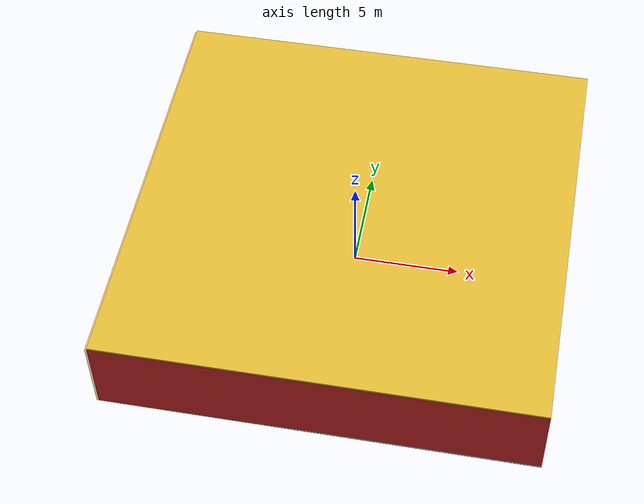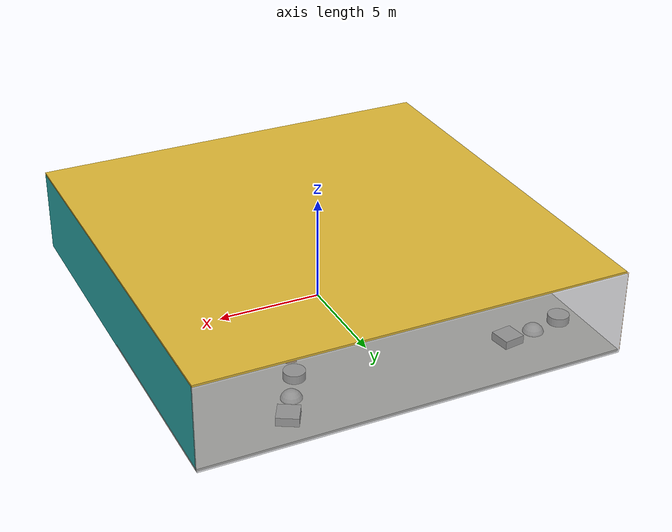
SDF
<sdf version="1.4">
 <world name="default">
  <physics type="ode">
   <max_step_size>0.001</max_step_size>
   <real_time_factor>1</real_time_factor>
   <real_time_update_rate>1000</real_time_update_rate>
   <gravity>0 0 -9.8</gravity>
  </physics>
  <scene><ambient>0.4 0.4 0.4 1</ambient><background>0.7 0.7 0.7 1</background><shadows>1</shadows></scene>
  <model name="Surrounding">
   <static>1</static>
   <link name="Ceiling">
    <collision name="Ceiling_Collision"><geometry><box><size>20 20 0.1</size></box></geometry></collision>
    <visual name="Ceiling_Visual">
     <geometry><box><size>20 20 0.1</size></box></geometry>
     <material>
      <script><uri>file://media/materials/scripts/gazebo.material</uri><name>Gazebo/Gold</name></script>
     </material>
    </visual>
    <pose>0 0 4.05 0 0 0</pose>
   </link>
   <link name="Wall_South">
    <collision name="Wall_South_Collision">
     <geometry><box><size>20 0 4</size></box></geometry>
     <pose>0 0 2 0 -0 0</pose>
    </collision>
    <visual name="Wall_South_Visual">
     <pose>0 0 2 0 -0 0</pose>
     <geometry><box><size>20 0 4</size></box></geometry>
     <material>
      <script><uri>file://media/materials/scripts/gazebo.material</uri><name>Gazebo/Red</name></script>
     </material>
    </visual>
    <velocity_decay><linear>0</linear><angular>0</angular></velocity_decay>
    <pose>0 -10 0 0 -0 0</pose>
   </link>
   <link name="Wall_East">
    <collision name="Wall_21_Collision">
     <geometry><box><size>20 0 4</size></box></geometry>
     <pose>0 0 2 0 -0 0</pose>
    </collision>
    <visual name="Wall_21_Visual">
     <pose>0 0 2 0 -0 0</pose>
     <geometry><box><size>20 0 4</size></box></geometry>
     <material>
      <script>
       <uri>file://media/materials/scripts/gazebo.material</uri>
       <name>Gazebo/TurquoiseGlowOutline</name>
      </script>
     </material>
    </visual>
    <velocity_decay><linear>0</linear><angular>0</angular></velocity_decay>
    <pose>10 0 0 0 -0 1.5708</pose>
   </link>
   <link name="Wall_North">
    <collision name="Wall_22_Collision">
     <geometry><box><size>20 0.2 4</size></box></geometry>
     <pose>0 0 2 0 -0 0</pose>
    </collision>
    <visual name="Wall_22_Visual">
     <pose>0 0 2 0 -0 0</pose>
     <geometry><box><size>20 0.2 4</size></box></geometry>
     <material>
      <script><uri>file://media/materials/scripts/gazebo.material</uri><name>Gazebo/GreyTransparent</name></script>
     </material>
    </visual>
    <velocity_decay><linear>0</linear><angular>0</angular></velocity_decay>
    <pose>0 10 0 0 -0 0</pose>
   </link>
   <link name="Wall_West">
    <collision name="Wall_23_Collision">
     <geometry><box><size>20 0.2 4</size></box></geometry>
     <pose>0 0 2 0 -0 0</pose>
    </collision>
    <visual name="Wall_23_Visual">
     <pose>0 0 2 0 -0 0</pose>
     <geometry><box><size>20 0.2 4</size></box></geometry>
     <material>
      <script>
       <uri>file://media/materials/scripts/gazebo.material</uri>
       <name>Gazebo/OrangeTransparent</name>
      </script>
     </material>
    </visual>
    <velocity_decay><linear>0</linear><angular>0</angular></velocity_decay>
    <pose>-10 0 0 0 0 -1.5708</pose>
   </link>
   <link name="Ground_link">
    <collision name="collision">
     <pose>0 0 .05 0 -0 0</pose>
     <geometry><box><size>20 20 0.1</size></box></geometry>
    </collision>
    <visual name="visual">
     <pose>0 0 .05 0 -0 0</pose>
     <geometry><box><size>20 20 0.1</size></box></geometry>
     <material>
      <script><uri>file://media/materials/scripts/gazebo.material</uri><name>Gazebo/CeilingTiled</name></script>
     </material>
    </visual>
   </link>
   <static>1</static>
  </model>
  <spherical_coordinates>
   <surface_model>EARTH_WGS84</surface_model>
   <latitude_deg>0</latitude_deg>
   <longitude_deg>0</longitude_deg>
   <elevation>0</elevation>
   <heading_deg>0</heading_deg>
  </spherical_coordinates>
  <light name="lightball_0" type="diffuse">
   <diffuse>0.8 0.8 0.8 1</diffuse>
   <specular>0.2 0.2 0.2 1</specular>
   <attenuation>
    <range>100</range>
    <constant>0.7</constant>
    <linear>0.01</linear>
    <quadratic>0.001</quadratic>
   </attenuation>
   <direction>-0.5 0.1 -0.9</direction>
   <pose>-4.99552034099 1.52296651775 1.20628257131 0 0 0</pose>
  </light>
  <light name="lightball_1" type="diffuse">
   <diffuse>0.8 0.8 0.8 1</diffuse>
   <specular>0.2 0.2 0.2 1</specular>
   <attenuation>
    <range>100</range>
    <constant>0.7</constant>
    <linear>0.01</linear>
    <quadratic>0.001</quadratic>
   </attenuation>
   <direction>-0.5 0.1 -0.9</direction>
   <pose>-5.54338538449 5.89286629848 2.9626432266 0 0 0</pose>
  </light>
  <light name="lightball_2" type="diffuse">
   <diffuse>0.8 0.8 0.8 1</diffuse>
   <specular>0.2 0.2 0.2 1</specular>
   <attenuation>
    <range>100</range>
    <constant>0.7</constant>
    <linear>0.01</linear>
    <quadratic>0.001</quadratic>
   </attenuation>
   <direction>-0.5 0.1 -0.9</direction>
   <pose>2.60274256381 -8.83330716321 3.1825304495 0 0 0</pose>
  </light>
  <light name="lightball_3" type="diffuse">
   <diffuse>0.8 0.8 0.8 1</diffuse>
   <specular>0.2 0.2 0.2 1</specular>
   <attenuation>
    <range>100</range>
    <constant>0.7</constant>
    <linear>0.01</linear>
    <quadratic>0.001</quadratic>
   </attenuation>
   <direction>-0.5 0.1 -0.9</direction>
   <pose>-6.95345497927 -1.07912948438 2.04498275375 0 0 0</pose>
  </light>
  <light name="lightball_4" type="diffuse">
   <diffuse>0.8 0.8 0.8 1</diffuse>
   <specular>0.2 0.2 0.2 1</specular>
   <attenuation>
    <range>100</range>
    <constant>0.7</constant>
    <linear>0.01</linear>
    <quadratic>0.001</quadratic>
   </attenuation>
   <direction>-0.5 0.1 -0.9</direction>
   <pose>-0.875035702917 -6.7222838312 2.04575010528 0 0 0</pose>
  </light>
  <light name="lightball_5" type="diffuse">
   <diffuse>0.8 0.8 0.8 1</diffuse>
   <specular>0.2 0.2 0.2 1</specular>
   <attenuation>
    <range>100</range>
    <constant>0.7</constant>
    <linear>0.01</linear>
    <quadratic>0.001</quadratic>
   </attenuation>
   <direction>-0.5 0.1 -0.9</direction>
   <pose>-2.0444798217 -0.237188208543 0.579716143969 0 0 0</pose>
  </light>
  <light name="lightball_6" type="diffuse">
   <diffuse>0.8 0.8 0.8 1</diffuse>
   <specular>0.2 0.2 0.2 1</specular>
   <attenuation>
    <range>100</range>
    <constant>0.7</constant>
    <linear>0.01</linear>
    <quadratic>0.001</quadratic>
   </attenuation>
   <direction>-0.5 0.1 -0.9</direction>
   <pose>0.307000412737 -0.352150664148 3.32470146485 0 0 0</pose>
  </light>
  <include>
   <uri>model://textured_shapes</uri>
   <pose>-7.39306652481 7.14805384692 0 0 0 1.71556371118</pose>
  </include>
  <include>
   <uri>model://construction_cone</uri>
   <pose>-4.21573506849 -6.33434982664 0 0 0 1.54382055836</pose>
  </include>
  <include>
   <uri>model://construction_cone</uri>
   <pose>-5.0463424159 -1.64911924552 0 0 0 0.826642332163</pose>
  </include>
  <include><uri>model://cabinet</uri><pose>3.91703645403 -4.66362217747 0 0 0 2.1114134495</pose></include>
  <include><uri>model://cabinet</uri><pose>3.50855208037 4.57519316487 0 0 0 1.41050490478</pose></include>
  <include>
   <uri>model://textured_shapes</uri>
   <pose>4.63928664467 7.21996193153 0 0 0 2.63371502507</pose>
  </include>
 </world>
</sdf>

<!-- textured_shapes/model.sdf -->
<sdf version="1.6">
  <model name="textured_shapes">
    <pose>0 0 0.5 0 0 0</pose>
    <link name="box">
      <pose>0 -1.5 0 0 0 0</pose>
      <collision name="collision">
        <geometry>
          <box>
            <size>1 1 1</size>
          </box>
        </geometry>
      </collision>
      <visual name="visual">
        <geometry>
          <box>
            <size>1 1 1</size>
          </box>
        </geometry>
        <material>
          <script>
            <uri>model://../model_source/models/textured_shapes/materials/scripts</uri>
            <uri>model://../model_source/models/textured_shapes/materials/textures</uri>
            <name>TexturedShape/Squares</name>
          </script>
        </material>
      </visual>
    </link>
    <link name="sphere">
      <collision name="collision">
        <geometry>
          <sphere>
            <radius>0.5</radius>
          </sphere>
        </geometry>
      </collision>
      <visual name="visual">
        <geometry>
          <sphere>
            <radius>0.5</radius>
          </sphere>
        </geometry>
        <material>
          <script>
            <uri>model://../model_source/models/textured_shapes/materials/scripts</uri>
            <uri>model://../model_source/models/textured_shapes/materials/textures</uri>
            <name>TexturedShape/Squares</name>
          </script>
        </material>
      </visual>
    </link>
    <link name="cylinder">
      <pose>0 1.5 0 0 0 0</pose>
      <collision name="collision">
        <geometry>
          <cylinder>
            <radius>0.5</radius>
            <length>1</length>
          </cylinder>
        </geometry>
      </collision>
      <visual name="visual">
        <geometry>
          <cylinder>
            <radius>0.5</radius>
            <length>1</length>
          </cylinder>
        </geometry>
        <material>
          <script>
            <uri>model://../model_source/models/textured_shapes/materials/scripts</uri>
            <uri>model://../model_source/models/textured_shapes/materials/textures</uri>
            <name>TexturedShape/Squares</name>
          </script>
        </material>
      </visual>
    </link>
  </model>
</sdf>

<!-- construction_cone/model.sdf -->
<sdf version="1.5">
  <model name="Construction Cone">
    <link name="link">
      <collision name="collision">
        <geometry>
          <mesh>
            <scale>10 10 10</scale>
            <uri>file://isr-testbed/construction_cone/meshes/construction_cone.dae</uri>
          </mesh>
        </geometry>
      </collision>
      <visual name="visual">
        <geometry>
          <mesh>
            <scale>10 10 10</scale>
            <uri>file://isr-testbed/construction_cone/meshes/construction_cone.dae</uri>
          </mesh>
        </geometry>
      </visual>
    </link>
  </model>
</sdf>

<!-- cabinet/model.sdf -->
<sdf version="1.5">
  <model name="cabinet">
    <static>true</static>
    <link name="cabinet_bottom_plate">
      <inertial>
        <pose>0 0 -1 0 0 0</pose>
        <inertia>
          <ixx>2.050000</ixx>
          <ixy>0</ixy>
          <ixz>0</ixz>
          <iyy>2.050000</iyy>
          <iyz>0</iyz>
          <izz>2.050000</izz>
        </inertia>
        <mass>25.000000</mass>
      </inertial>
      <collision name="cabinet_bottom_plate_geom">
        <pose>0 0 0.010000 0 0 0</pose>
        <geometry>
          <box>
            <size>0.450000 0.450000 0.020000</size>
          </box>
        </geometry>
      </collision>
      <visual name="cabinet_bottom_plate_geom_visual">
        <pose>0 0 0.010000 0 0 0</pose>
        <geometry>
          <box>
            <size>0.450000 0.450000 0.020000</size>
          </box>
        </geometry>
        <material>
          <script>
            <uri>model://media/materials/scripts/gazebo.material</uri>
            <name>Gazebo/Wood</name>
          </script>
        </material>
      </visual>
      <collision name="cabinet_bottom_plate_geom_cabinet_back_plate">
        <pose>0.235000 0 0.510000 0 0 0</pose>
        <geometry>
          <box>
            <size>0.020000 0.450000 1.020000</size>
          </box>
        </geometry>
      </collision>
      <visual name="cabinet_bottom_plate_geom_cabinet_back_plate_visual">
        <pose>0.235000 0 0.510000 0 0 0</pose>
        <geometry>
          <box>
            <size>0.020000 0.450000 1.020000</size>
          </box>
        </geometry>
        <material>
          <script>
            <uri>model://media/materials/scripts/gazebo.material</uri>
            <name>Gazebo/Wood</name>
          </script>
        </material>
      </visual>
      <collision name="cabinet_bottom_plate_geom_cabinet_left_plate">
        <pose>0 0.235000 0.510000 0 0 0</pose>
        <geometry>
          <box>
            <size>0.450000 0.020000 1.020000</size>
          </box>
        </geometry>
      </collision>
      <visual name="cabinet_bottom_plate_geom_cabinet_left_plate_visual">
        <pose>0 0.235000 0.510000 0 0 0</pose>
        <geometry>
          <box>
            <size>0.450000 0.020000 1.020000</size>
          </box>
        </geometry>
        <material>
          <script>
            <uri>model://media/materials/scripts/gazebo.material</uri>
            <name>Gazebo/Wood</name>
          </script>
        </material>
      </visual>
      <collision name="cabinet_bottom_plate_geom_cabinet_middle_plate">
        <pose>0 0 0.510000 0 0 0</pose>
        <geometry>
          <box>
            <size>0.450000 0.450000 0.020000</size>
          </box>
        </geometry>
      </collision>
      <visual name="cabinet_bottom_plate_geom_cabinet_middle_plate_visual">
        <pose>0 0 0.510000 0 0 0</pose>
        <geometry>
          <box>
            <size>0.450000 0.450000 0.020000</size>
          </box>
        </geometry>
        <material>
          <script>
            <uri>model://media/materials/scripts/gazebo.material</uri>
            <name>Gazebo/Wood</name>
          </script>
        </material>
      </visual>
      <collision name="cabinet_bottom_plate_geom_cabinet_right_plate">
        <pose>0 -0.235000 0.510000 0 0 0</pose>
        <geometry>
          <box>
            <size>0.450000 0.020000 1.020000</size>
          </box>
        </geometry>
      </collision>
      <visual name="cabinet_bottom_plate_geom_cabinet_right_plate_visual">
        <pose>0 -0.235000 0.510000 0 0 0</pose>
        <geometry>
          <box>
            <size>0.450000 0.020000 1.020000</size>
          </box>
        </geometry>
        <material>
          <script>
            <uri>model://media/materials/scripts/gazebo.material</uri>
            <name>Gazebo/Wood</name>
          </script>
        </material>
      </visual>
      <collision name="cabinet_bottom_plate_geom_cabinet_top_plate">
        <pose>0 0 1.010000 0 0 0</pose>
        <geometry>
          <box>
            <size>0.450000 0.450000 0.020000</size>
          </box>
        </geometry>
      </collision>
      <visual name="cabinet_bottom_plate_geom_cabinet_top_plate_visual">
        <pose>0 0 1.010000 0 0 0</pose>
        <geometry>
          <box>
            <size>0.450000 0.450000 0.020000</size>
          </box>
        </geometry>
        <material>
          <script>
            <uri>model://media/materials/scripts/gazebo.material</uri>
            <name>Gazebo/Wood</name>
          </script>
        </material>
      </visual>
    </link>
  </model>
</sdf>
